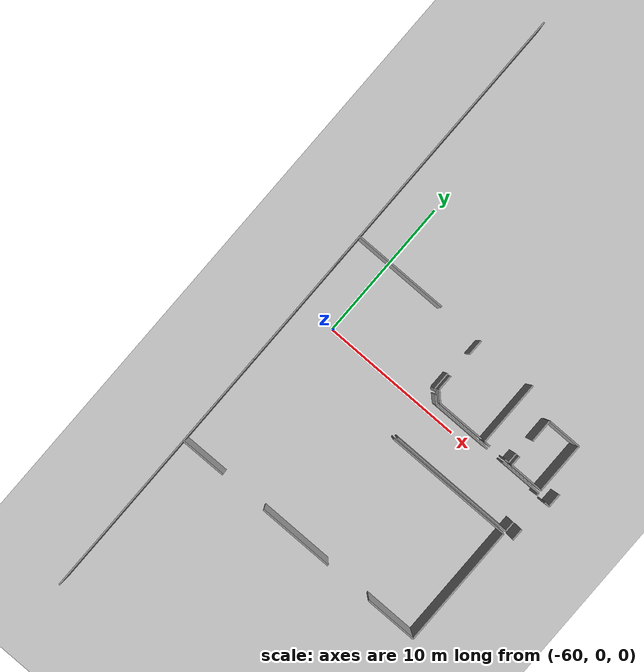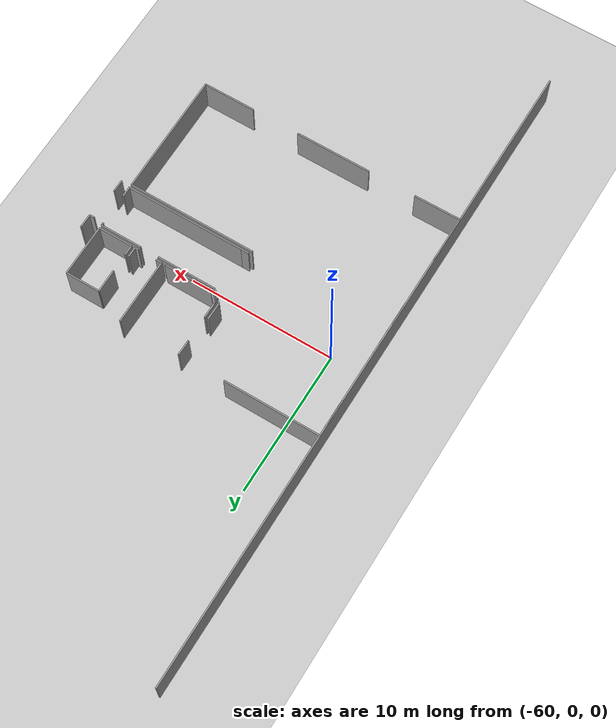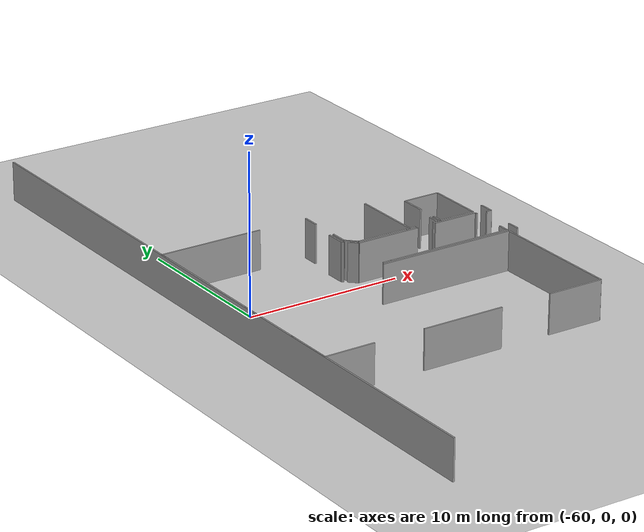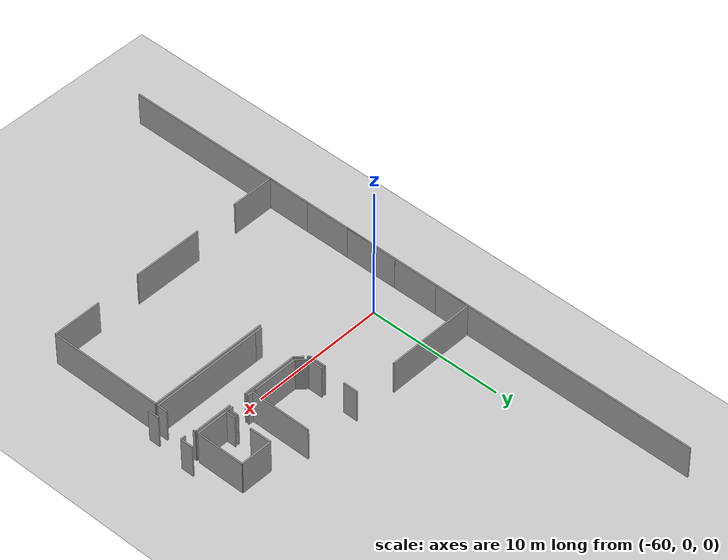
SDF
<sdf version="1.6">
 <world name="default">
  <model name="ground_plane">
   <static>1</static>
   <link name="link">
    <collision name="collision">
     <geometry><plane><normal>0 0 1</normal><size>100 100</size></plane></geometry>
     <surface><friction><ode><mu>100</mu><mu2>50</mu2></ode></friction></surface>
    </collision>
    <visual name="visual">
     <cast_shadows>0</cast_shadows>
     <geometry><plane><normal>0 0 1</normal><size>100 100</size></plane></geometry>
     <material>
      <script><uri>file://media/materials/scripts/gazebo.material</uri><name>Gazebo/Grey</name></script>
     </material>
    </visual>
   </link>
  </model>
  <model name="50010540">
   <static>1</static>
   <link name="Wall_29">
    <collision name="Wall_29_Collision">
     <geometry><box><size>3.23654089369 0.1 2.5</size></box></geometry>
     <pose>1.61827044685 0 1.25 0 0 0</pose>
    </collision>
    <visual name="Wall_29_Visual">
     <pose>1.61827044685 0 1.25 0 0 0</pose>
     <geometry><box><size>3.23654089369 0.1 2.5</size></box></geometry>
     <material>
      <script><uri>file://media/materials/scripts/gazebo.material</uri><name>Gazebo/Grey</name></script>
      <ambient>1 1 1 1</ambient>
     </material>
    </visual>
    <pose>0.00228793685294 -33.9973434511 0 0 0 1.57079632679</pose>
   </link>
   <link name="Wall_30">
    <collision name="Wall_30_Collision">
     <geometry><box><size>4.01380388568 0.1 2.5</size></box></geometry>
     <pose>2.00690194284 0 1.25 0 0 0</pose>
    </collision>
    <visual name="Wall_30_Visual">
     <pose>2.00690194284 0 1.25 0 0 0</pose>
     <geometry><box><size>4.01380388568 0.1 2.5</size></box></geometry>
     <material>
      <script><uri>file://media/materials/scripts/gazebo.material</uri><name>Gazebo/Grey</name></script>
      <ambient>1 1 1 1</ambient>
     </material>
    </visual>
    <pose>0.00228793685294 -27.3610555015 0 0 0 1.57079632679</pose>
   </link>
   <link name="Wall_31">
    <collision name="Wall_31_Collision">
     <geometry><box><size>2.57634400402 0.1 2.5</size></box></geometry>
     <pose>1.28817200201 0 1.25 0 0 0</pose>
    </collision>
    <visual name="Wall_31_Visual">
     <pose>1.28817200201 0 1.25 0 0 0</pose>
     <geometry><box><size>2.57634400402 0.1 2.5</size></box></geometry>
     <material>
      <script><uri>file://media/materials/scripts/gazebo.material</uri><name>Gazebo/Grey</name></script>
      <ambient>1 1 1 1</ambient>
     </material>
    </visual>
    <pose>0.00228793685294 -19.9604695355 0 0 0 1.57079632679</pose>
   </link>
   <link name="Wall_32">
    <collision name="Wall_32_Collision">
     <geometry><box><size>6.66094682453 0.1 2.5</size></box></geometry>
     <pose>3.33047341227 0 1.25 0 0 0</pose>
    </collision>
    <visual name="Wall_32_Visual">
     <pose>3.33047341227 0 1.25 0 0 0</pose>
     <geometry><box><size>6.66094682453 0.1 2.5</size></box></geometry>
     <material>
      <script><uri>file://media/materials/scripts/gazebo.material</uri><name>Gazebo/Grey</name></script>
      <ambient>1 1 1 1</ambient>
     </material>
    </visual>
    <pose>0.00228793685294 -17.3841255315 0 0 0 0.0</pose>
   </link>
   <link name="Wall_35">
    <collision name="Wall_35_Collision">
     <geometry><box><size>1.21387760809 0.1 2.5</size></box></geometry>
     <pose>0.606938804045 0 1.25 0 0 0</pose>
    </collision>
    <visual name="Wall_35_Visual">
     <pose>0.606938804045 0 1.25 0 0 0</pose>
     <geometry><box><size>1.21387760809 0.1 2.5</size></box></geometry>
     <material>
      <script><uri>file://media/materials/scripts/gazebo.material</uri><name>Gazebo/Grey</name></script>
      <ambient>1 1 1 1</ambient>
     </material>
    </visual>
    <pose>9.61734256135 -20.2357846035 0 0 0 -1.57079632679</pose>
   </link>
   <link name="Wall_36">
    <collision name="Wall_36_Collision">
     <geometry><box><size>0.174644412543 0.1 2.5</size></box></geometry>
     <pose>0.0873222062716 0 1.25 0 0 0</pose>
    </collision>
    <visual name="Wall_36_Visual">
     <pose>0.0873222062716 0 1.25 0 0 0</pose>
     <geometry><box><size>0.174644412543 0.1 2.5</size></box></geometry>
     <material>
      <script><uri>file://media/materials/scripts/gazebo.material</uri><name>Gazebo/Grey</name></script>
      <ambient>1 1 1 1</ambient>
     </material>
    </visual>
    <pose>9.61734256135 -21.4496622115 0 0 0 -0.796205771407</pose>
   </link>
   <link name="Wall_37">
    <collision name="Wall_37_Collision">
     <geometry><box><size>8.90706527611 0.1 2.5</size></box></geometry>
     <pose>4.45353263805 0 1.25 0 0 0</pose>
    </collision>
    <visual name="Wall_37_Visual">
     <pose>4.45353263805 0 1.25 0 0 0</pose>
     <geometry><box><size>8.90706527611 0.1 2.5</size></box></geometry>
     <material>
      <script><uri>file://media/materials/scripts/gazebo.material</uri><name>Gazebo/Grey</name></script>
      <ambient>1 1 1 1</ambient>
     </material>
    </visual>
    <pose>9.73949296777 -25.4635932048 0 0 0 0.0</pose>
   </link>
   <link name="Wall_38">
    <collision name="Wall_38_Collision">
     <geometry><box><size>8.51608228946 0.1 2.5</size></box></geometry>
     <pose>4.25804114473 0 1.25 0 0 0</pose>
    </collision>
    <visual name="Wall_38_Visual">
     <pose>4.25804114473 0 1.25 0 0 0</pose>
     <geometry><box><size>8.51608228946 0.1 2.5</size></box></geometry>
     <material>
      <script><uri>file://media/materials/scripts/gazebo.material</uri><name>Gazebo/Grey</name></script>
      <ambient>1 1 1 1</ambient>
     </material>
    </visual>
    <pose>18.6465582439 -25.4635932048 0 0 0 -1.57079632679</pose>
   </link>
   <link name="Wall_39">
    <collision name="Wall_39_Collision">
     <geometry><box><size>3.60947460072 0.1 2.5</size></box></geometry>
     <pose>1.80473730036 0 1.25 0 0 0</pose>
    </collision>
    <visual name="Wall_39_Visual">
     <pose>1.80473730036 0 1.25 0 0 0</pose>
     <geometry><box><size>3.60947460072 0.1 2.5</size></box></geometry>
     <material>
      <script><uri>file://media/materials/scripts/gazebo.material</uri><name>Gazebo/Grey</name></script>
      <ambient>1 1 1 1</ambient>
     </material>
    </visual>
    <pose>18.6465582439 -33.9796754943 0 0 0 3.14159265359</pose>
   </link>
   <link name="Wall_40">
    <collision name="Wall_40_Collision">
     <geometry><box><size>5.2374687792 0.1 2.5</size></box></geometry>
     <pose>2.6187343896 0 1.25 0 0 0</pose>
    </collision>
    <visual name="Wall_40_Visual">
     <pose>2.6187343896 0 1.25 0 0 0</pose>
     <geometry><box><size>5.2374687792 0.1 2.5</size></box></geometry>
     <material>
      <script><uri>file://media/materials/scripts/gazebo.material</uri><name>Gazebo/Grey</name></script>
      <ambient>1 1 1 1</ambient>
     </material>
    </visual>
    <pose>11.7381329164 -33.9796754943 0 0 0 3.14159265359</pose>
   </link>
   <link name="Wall_41">
    <collision name="Wall_41_Collision">
     <geometry><box><size>3.21599799424 0.1 2.5</size></box></geometry>
     <pose>1.60799899712 0 1.25 0 0 0</pose>
    </collision>
    <visual name="Wall_41_Visual">
     <pose>1.60799899712 0 1.25 0 0 0</pose>
     <geometry><box><size>3.21599799424 0.1 2.5</size></box></geometry>
     <material>
      <script><uri>file://media/materials/scripts/gazebo.material</uri><name>Gazebo/Grey</name></script>
      <ambient>1 1 1 1</ambient>
     </material>
    </visual>
    <pose>3.21823739887 -33.9796754943 0 0 0 -3.13609885486</pose>
   </link>
   <link name="Wall_44">
    <collision name="Wall_44_Collision">
     <geometry><box><size>3.35907262293 0.1 2.5</size></box></geometry>
     <pose>1.67953631146 0 1.25 0 0 0</pose>
    </collision>
    <visual name="Wall_44_Visual">
     <pose>1.67953631146 0 1.25 0 0 0</pose>
     <geometry><box><size>3.35907262293 0.1 2.5</size></box></geometry>
     <material>
      <script><uri>file://media/materials/scripts/gazebo.material</uri><name>Gazebo/Grey</name></script>
      <ambient>1 1 1 1</ambient>
     </material>
    </visual>
    <pose>13.8275276936 -21.937374084 0 0 0 3.14159265359</pose>
   </link>
   <link name="Wall_45">
    <collision name="Wall_45_Collision">
     <geometry><box><size>0.865820725998 0.1 2.5</size></box></geometry>
     <pose>0.432910362999 0 1.25 0 0 0</pose>
    </collision>
    <visual name="Wall_45_Visual">
     <pose>0.432910362999 0 1.25 0 0 0</pose>
     <geometry><box><size>0.865820725998 0.1 2.5</size></box></geometry>
     <material>
      <script><uri>file://media/materials/scripts/gazebo.material</uri><name>Gazebo/Grey</name></script>
      <ambient>1 1 1 1</ambient>
     </material>
    </visual>
    <pose>10.4684550706 -21.937374084 0 0 0 2.34944695427</pose>
   </link>
   <link name="Wall_46">
    <collision name="Wall_46_Collision">
     <geometry><box><size>1.07774536534 0.1 2.5</size></box></geometry>
     <pose>0.53887268267 0 1.25 0 0 0</pose>
    </collision>
    <visual name="Wall_46_Visual">
     <pose>0.53887268267 0 1.25 0 0 0</pose>
     <geometry><box><size>1.07774536534 0.1 2.5</size></box></geometry>
     <material>
      <script><uri>file://media/materials/scripts/gazebo.material</uri><name>Gazebo/Grey</name></script>
      <ambient>1 1 1 1</ambient>
     </material>
    </visual>
    <pose>9.86037229817 -21.3210293174 0 0 0 1.57079632679</pose>
   </link>
   <link name="Wall_47">
    <collision name="Wall_47_Collision">
     <geometry><box><size>1.08069486092 0.1 2.5</size></box></geometry>
     <pose>0.540347430461 0 1.25 0 0 0</pose>
    </collision>
    <visual name="Wall_47_Visual">
     <pose>0.540347430461 0 1.25 0 0 0</pose>
     <geometry><box><size>1.08069486092 0.1 2.5</size></box></geometry>
     <material>
      <script><uri>file://media/materials/scripts/gazebo.material</uri><name>Gazebo/Grey</name></script>
      <ambient>1 1 1 1</ambient>
     </material>
    </visual>
    <pose>9.86037229817 -18.4586932067 0 0 0 1.56385689455</pose>
   </link>
   <link name="Wall_48">
    <collision name="Wall_48_Collision">
     <geometry><box><size>0.546435585045 0.1 2.5</size></box></geometry>
     <pose>0.273217792522 0 1.25 0 0 0</pose>
    </collision>
    <visual name="Wall_48_Visual">
     <pose>0.273217792522 0 1.25 0 0 0</pose>
     <geometry><box><size>0.546435585045 0.1 2.5</size></box></geometry>
     <material>
      <script><uri>file://media/materials/scripts/gazebo.material</uri><name>Gazebo/Grey</name></script>
      <ambient>1 1 1 1</ambient>
     </material>
    </visual>
    <pose>10.4307041126 -25.2600939325 0 0 0 3.14159265359</pose>
   </link>
   <link name="Wall_49">
    <collision name="Wall_49_Collision">
     <geometry><box><size>0.655086307743 0.1 2.5</size></box></geometry>
     <pose>0.327543153871 0 1.25 0 0 0</pose>
    </collision>
    <visual name="Wall_49_Visual">
     <pose>0.327543153871 0 1.25 0 0 0</pose>
     <geometry><box><size>0.655086307743 0.1 2.5</size></box></geometry>
     <material>
      <script><uri>file://media/materials/scripts/gazebo.material</uri><name>Gazebo/Grey</name></script>
      <ambient>1 1 1 1</ambient>
     </material>
    </visual>
    <pose>9.88426852752 -21.7028605566 0 0 0 -0.764679295178</pose>
   </link>
   <link name="Wall_50">
    <collision name="Wall_50_Collision">
     <geometry><box><size>4.13086998799 0.1 2.5</size></box></geometry>
     <pose>2.06543499399 0 1.25 0 0 0</pose>
    </collision>
    <visual name="Wall_50_Visual">
     <pose>2.06543499399 0 1.25 0 0 0</pose>
     <geometry><box><size>4.13086998799 0.1 2.5</size></box></geometry>
     <material>
      <script><uri>file://media/materials/scripts/gazebo.material</uri><name>Gazebo/Grey</name></script>
      <ambient>1 1 1 1</ambient>
     </material>
    </visual>
    <pose>10.3569817029 -22.1563804839 0 0 0 0.0</pose>
   </link>
   <link name="Wall_51">
    <collision name="Wall_51_Collision">
     <geometry><box><size>2.9039002968 0.1 2.5</size></box></geometry>
     <pose>1.4519501484 0 1.25 0 0 0</pose>
    </collision>
    <visual name="Wall_51_Visual">
     <pose>1.4519501484 0 1.25 0 0 0</pose>
     <geometry><box><size>2.9039002968 0.1 2.5</size></box></geometry>
     <material>
      <script><uri>file://media/materials/scripts/gazebo.material</uri><name>Gazebo/Grey</name></script>
      <ambient>1 1 1 1</ambient>
     </material>
    </visual>
    <pose>15.7429121623 -22.1563804839 0 0 0 0.0</pose>
   </link>
   <link name="Wall_52">
    <collision name="Wall_52_Collision">
     <geometry><box><size>0.185449992691 0.1 2.5</size></box></geometry>
     <pose>0.0927249963457 0 1.25 0 0 0</pose>
    </collision>
    <visual name="Wall_52_Visual">
     <pose>0.0927249963457 0 1.25 0 0 0</pose>
     <geometry><box><size>0.185449992691 0.1 2.5</size></box></geometry>
     <material>
      <script><uri>file://media/materials/scripts/gazebo.material</uri><name>Gazebo/Grey</name></script>
      <ambient>1 1 1 1</ambient>
     </material>
    </visual>
    <pose>18.6468124591 -22.1563804839 0 0 0 -1.57079632679</pose>
   </link>
   <link name="Wall_53">
    <collision name="Wall_53_Collision">
     <geometry><box><size>0.712692329692 0.1 2.5</size></box></geometry>
     <pose>0.356346164846 0 1.25 0 0 0</pose>
    </collision>
    <visual name="Wall_53_Visual">
     <pose>0.356346164846 0 1.25 0 0 0</pose>
     <geometry><box><size>0.712692329692 0.1 2.5</size></box></geometry>
     <material>
      <script><uri>file://media/materials/scripts/gazebo.material</uri><name>Gazebo/Grey</name></script>
      <ambient>1 1 1 1</ambient>
     </material>
    </visual>
    <pose>18.6468124591 -24.5440968052 0 0 0 -1.57079632679</pose>
   </link>
   <link name="Wall_54">
    <collision name="Wall_54_Collision">
     <geometry><box><size>8.21610901117 0.1 2.5</size></box></geometry>
     <pose>4.10805450559 0 1.25 0 0 0</pose>
    </collision>
    <visual name="Wall_54_Visual">
     <pose>4.10805450559 0 1.25 0 0 0</pose>
     <geometry><box><size>8.21610901117 0.1 2.5</size></box></geometry>
     <material>
      <script><uri>file://media/materials/scripts/gazebo.material</uri><name>Gazebo/Grey</name></script>
      <ambient>1 1 1 1</ambient>
     </material>
    </visual>
    <pose>18.6468124591 -25.2567891348 0 0 0 -3.14119041967</pose>
   </link>
   <link name="Wall_55">
    <collision name="Wall_55_Collision">
     <geometry><box><size>4.55655335024 0.1 2.5</size></box></geometry>
     <pose>2.27827667512 0 1.25 0 0 0</pose>
    </collision>
    <visual name="Wall_55_Visual">
     <pose>2.27827667512 0 1.25 0 0 0</pose>
     <geometry><box><size>4.55655335024 0.1 2.5</size></box></geometry>
     <material>
      <script><uri>file://media/materials/scripts/gazebo.material</uri><name>Gazebo/Grey</name></script>
      <ambient>1 1 1 1</ambient>
     </material>
    </visual>
    <pose>14.0753875193 -21.9378825144 0 0 0 1.57079632679</pose>
   </link>
   <link name="Wall_58">
    <collision name="Wall_58_Collision">
     <geometry><box><size>0.720445893471 0.1 2.5</size></box></geometry>
     <pose>0.360222946736 0 1.25 0 0 0</pose>
    </collision>
    <visual name="Wall_58_Visual">
     <pose>0.360222946736 0 1.25 0 0 0</pose>
     <geometry><box><size>0.720445893471 0.1 2.5</size></box></geometry>
     <material>
      <script><uri>file://media/materials/scripts/gazebo.material</uri><name>Gazebo/Grey</name></script>
      <ambient>1 1 1 1</ambient>
     </material>
    </visual>
    <pose>16.0268705473 -21.2251901848 0 0 0 -1.57079632679</pose>
   </link>
   <link name="Wall_59">
    <collision name="Wall_59_Collision">
     <geometry><box><size>0.279890941677 0.1 2.5</size></box></geometry>
     <pose>0.139945470838 0 1.25 0 0 0</pose>
    </collision>
    <visual name="Wall_59_Visual">
     <pose>0.139945470838 0 1.25 0 0 0</pose>
     <geometry><box><size>0.279890941677 0.1 2.5</size></box></geometry>
     <material>
      <script><uri>file://media/materials/scripts/gazebo.material</uri><name>Gazebo/Grey</name></script>
      <ambient>1 1 1 1</ambient>
     </material>
    </visual>
    <pose>16.0268705473 -21.9456360782 0 0 0 3.14159265359</pose>
   </link>
   <link name="Wall_60">
    <collision name="Wall_60_Collision">
     <geometry><box><size>0.413553723087 0.1 2.5</size></box></geometry>
     <pose>0.206776861544 0 1.25 0 0 0</pose>
    </collision>
    <visual name="Wall_60_Visual">
     <pose>0.206776861544 0 1.25 0 0 0</pose>
     <geometry><box><size>0.413553723087 0.1 2.5</size></box></geometry>
     <material>
      <script><uri>file://media/materials/scripts/gazebo.material</uri><name>Gazebo/Grey</name></script>
      <ambient>1 1 1 1</ambient>
     </material>
    </visual>
    <pose>14.4888685517 -21.9456360782 0 0 0 3.12284292976</pose>
   </link>
   <link name="Wall_61">
    <collision name="Wall_61_Collision">
     <geometry><box><size>2.37182787088 0.1 2.5</size></box></geometry>
     <pose>1.18591393544 0 1.25 0 0 0</pose>
    </collision>
    <visual name="Wall_61_Visual">
     <pose>1.18591393544 0 1.25 0 0 0</pose>
     <geometry><box><size>2.37182787088 0.1 2.5</size></box></geometry>
     <material>
      <script><uri>file://media/materials/scripts/gazebo.material</uri><name>Gazebo/Grey</name></script>
      <ambient>1 1 1 1</ambient>
     </material>
    </visual>
    <pose>16.2711713601 -18.3695907771 0 0 0 0.0</pose>
   </link>
   <link name="Wall_62">
    <collision name="Wall_62_Collision">
     <geometry><box><size>3.57197785786 0.1 2.5</size></box></geometry>
     <pose>1.78598892893 0 1.25 0 0 0</pose>
    </collision>
    <visual name="Wall_62_Visual">
     <pose>1.78598892893 0 1.25 0 0 0</pose>
     <geometry><box><size>3.57197785786 0.1 2.5</size></box></geometry>
     <material>
      <script><uri>file://media/materials/scripts/gazebo.material</uri><name>Gazebo/Grey</name></script>
      <ambient>1 1 1 1</ambient>
     </material>
    </visual>
    <pose>18.642999231 -18.3695907771 0 0 0 -1.57079632679</pose>
   </link>
   <link name="Wall_63">
    <collision name="Wall_63_Collision">
     <geometry><box><size>2.36242190827 0.1 2.5</size></box></geometry>
     <pose>1.18121095413 0 1.25 0 0 0</pose>
    </collision>
    <visual name="Wall_63_Visual">
     <pose>1.18121095413 0 1.25 0 0 0</pose>
     <geometry><box><size>2.36242190827 0.1 2.5</size></box></geometry>
     <material>
      <script><uri>file://media/materials/scripts/gazebo.material</uri><name>Gazebo/Grey</name></script>
      <ambient>1 1 1 1</ambient>
     </material>
    </visual>
    <pose>18.642999231 -21.9415686349 0 0 0 3.14159265359</pose>
   </link>
   <link name="Wall_64">
    <collision name="Wall_64_Collision">
     <geometry><box><size>0.716759772986 0.1 2.5</size></box></geometry>
     <pose>0.358379886493 0 1.25 0 0 0</pose>
    </collision>
    <visual name="Wall_64_Visual">
     <pose>0.358379886493 0 1.25 0 0 0</pose>
     <geometry><box><size>0.716759772986 0.1 2.5</size></box></geometry>
     <material>
      <script><uri>file://media/materials/scripts/gazebo.material</uri><name>Gazebo/Grey</name></script>
      <ambient>1 1 1 1</ambient>
     </material>
    </visual>
    <pose>16.2805773227 -21.9415686349 0 0 0 1.57079632679</pose>
   </link>
   <link name="Wall_65">
    <collision name="Wall_65_Collision">
     <geometry><box><size>1.59865999315 0.1 2.5</size></box></geometry>
     <pose>0.799329996574 0 1.25 0 0 0</pose>
    </collision>
    <visual name="Wall_65_Visual">
     <pose>0.799329996574 0 1.25 0 0 0</pose>
     <geometry><box><size>1.59865999315 0.1 2.5</size></box></geometry>
     <material>
      <script><uri>file://media/materials/scripts/gazebo.material</uri><name>Gazebo/Grey</name></script>
      <ambient>1 1 1 1</ambient>
     </material>
    </visual>
    <pose>16.2805773227 -19.9682230993 0 0 0 1.57668001496</pose>
   </link>
   <link name="Wall_68">
    <collision name="Wall_68_Collision">
     <geometry><box><size>0.838910179412 0.1 2.5</size></box></geometry>
     <pose>0.419455089706 0 1.25 0 0 0</pose>
    </collision>
    <visual name="Wall_68_Visual">
     <pose>0.419455089706 0 1.25 0 0 0</pose>
     <geometry><box><size>0.838910179412 0.1 2.5</size></box></geometry>
     <material>
      <script><uri>file://media/materials/scripts/gazebo.material</uri><name>Gazebo/Grey</name></script>
      <ambient>1 1 1 1</ambient>
     </material>
    </visual>
    <pose>19.3227706915 -25.3833883074 0 0 0 1.57079632679</pose>
   </link>
   <link name="Wall_69">
    <collision name="Wall_69_Collision">
     <geometry><box><size>0.346368218015 0.1 2.5</size></box></geometry>
     <pose>0.173184109007 0 1.25 0 0 0</pose>
    </collision>
    <visual name="Wall_69_Visual">
     <pose>0.173184109007 0 1.25 0 0 0</pose>
     <geometry><box><size>0.346368218015 0.1 2.5</size></box></geometry>
     <material>
      <script><uri>file://media/materials/scripts/gazebo.material</uri><name>Gazebo/Grey</name></script>
      <ambient>1 1 1 1</ambient>
     </material>
    </visual>
    <pose>19.3227706915 -22.352888838 0 0 0 0.0</pose>
   </link>
   <link name="Wall_70">
    <collision name="Wall_70_Collision">
     <geometry><box><size>0.955976281721 0.1 2.5</size></box></geometry>
     <pose>0.477988140861 0 1.25 0 0 0</pose>
    </collision>
    <visual name="Wall_70_Visual">
     <pose>0.477988140861 0 1.25 0 0 0</pose>
     <geometry><box><size>0.955976281721 0.1 2.5</size></box></geometry>
     <material>
      <script><uri>file://media/materials/scripts/gazebo.material</uri><name>Gazebo/Grey</name></script>
      <ambient>1 1 1 1</ambient>
     </material>
    </visual>
    <pose>19.6691389095 -22.352888838 0 0 0 1.57079632679</pose>
   </link>
   <link name="Wall_352">
    <collision name="Wall_352_Collision">
     <geometry><box><size>45.661372635 0.1 2.5</size></box></geometry>
     <pose>22.8306863175 0 1.25 0 0 0</pose>
    </collision>
    <visual name="Wall_352_Visual">
     <pose>22.8306863175 0 1.25 0 0 0</pose>
     <geometry><box><size>45.661372635 0.1 2.5</size></box></geometry>
     <material>
      <script><uri>file://media/materials/scripts/gazebo.material</uri><name>Gazebo/Grey</name></script>
      <ambient>1 1 1 1</ambient>
     </material>
    </visual>
    <pose>0.0 -45.661372635 0 0 0 1.57079632679</pose>
   </link>
   <pose>-62.5 22.811372635 0 0 0 0</pose>
  </model>
 </world>
</sdf>
